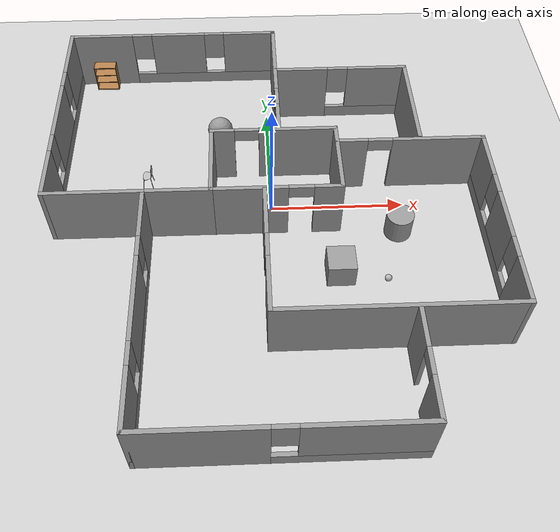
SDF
<sdf version="1.7">
 <world name="default">
  <light name="sun" type="directional">
   <pose>0 0 10 0 -0 0</pose>
   <diffuse>0.8 0.8 0.8 1</diffuse>
   <specular>0.2 0.2 0.2 1</specular>
   <attenuation>
    <range>1000</range>
    <constant>0.9</constant>
    <linear>0.01</linear>
    <quadratic>0.001</quadratic>
   </attenuation>
   <direction>-0.5 0.1 -0.9</direction>
   <spot><inner_angle>0</inner_angle><outer_angle>0</outer_angle><falloff>0</falloff></spot>
  </light>
  <model name="ground_plane">
   <static>1</static>
   <link name="link">
    <collision name="collision">
     <geometry><plane><normal>0 0 1</normal><size>100 100</size></plane></geometry>
     <surface>
      <contact><collide_bitmask>65535</collide_bitmask></contact>
      <friction><ode><mu>100</mu><mu2>50</mu2></ode></friction>
     </surface>
    </collision>
    <visual name="visual">
     <cast_shadows>0</cast_shadows>
     <geometry><plane><normal>0 0 1</normal><size>100 100</size></plane></geometry>
     <material>
      <script><uri>file://media/materials/scripts/gazebo.material</uri><name>Gazebo/Grey</name></script>
     </material>
    </visual>
   </link>
  </model>
  <gravity>0 0 -9.8</gravity>
  <magnetic_field>6e-06 2.3e-05 -4.2e-05</magnetic_field>
  <atmosphere type="adiabatic"/>
  <physics type="ode">
   <max_step_size>0.001</max_step_size>
   <real_time_factor>1</real_time_factor>
   <real_time_update_rate>1000</real_time_update_rate>
  </physics>
  <scene><ambient>0.4 0.4 0.4 1</ambient><background>0.7 0.7 0.7 1</background><shadows>1</shadows></scene>
  <spherical_coordinates>
   <surface_model>EARTH_WGS84</surface_model>
   <latitude_deg>0</latitude_deg>
   <longitude_deg>0</longitude_deg>
   <elevation>0</elevation>
   <heading_deg>0</heading_deg>
  </spherical_coordinates>
  <model name="groundfloor">
   <pose>-0.0948 -1.11512 0 0 -0 0</pose>
   <link name="Wall_0">
    <collision name="Wall_0_Collision">
     <geometry><box><size>3 0.15 2.5</size></box></geometry>
     <pose>0 0 1.25 0 -0 0</pose>
    </collision>
    <visual name="Wall_0_Visual">
     <pose>0 0 1.25 0 -0 0</pose>
     <geometry><box><size>3 0.15 2.5</size></box></geometry>
     <material>
      <script><uri>file://media/materials/scripts/gazebo.material</uri><name>Gazebo/Grey</name></script>
      <ambient>1 1 1 1</ambient>
     </material>
     <meta><layer>0</layer></meta>
    </visual>
    <pose>-2.06127 1.45738 0 0 -0 1.5708</pose>
   </link>
   <link name="Wall_1">
    <pose>0.238729 2.88238 0 0 -0 0</pose>
    <visual name="Wall_1_Visual_0">
     <pose>-1.91205 0 1.25 0 -0 0</pose>
     <geometry><box><size>0.925905 0.15 2.5</size></box></geometry>
     <material>
      <script><uri>file://media/materials/scripts/gazebo.material</uri><name>Gazebo/Grey</name></script>
      <ambient>1 1 1 1</ambient>
     </material>
     <meta><layer>0</layer></meta>
    </visual>
    <collision name="Wall_1_Collision_0">
     <geometry><box><size>0.925905 0.15 2.5</size></box></geometry>
     <pose>-1.91205 0 1.25 0 -0 0</pose>
    </collision>
    <visual name="Wall_1_Visual_1">
     <pose>0.912952 0 1.25 0 -0 0</pose>
     <geometry><box><size>2.92409 0.15 2.5</size></box></geometry>
     <material>
      <script><uri>file://media/materials/scripts/gazebo.material</uri><name>Gazebo/Grey</name></script>
      <ambient>1 1 1 1</ambient>
     </material>
     <meta><layer>0</layer></meta>
    </visual>
    <collision name="Wall_1_Collision_1">
     <geometry><box><size>2.92409 0.15 2.5</size></box></geometry>
     <pose>0.912952 0 1.25 0 -0 0</pose>
    </collision>
    <visual name="Wall_1_Visual_2">
     <pose>-0.999095 0 2.25 0 -0 0</pose>
     <geometry><box><size>0.9 0.15 0.5</size></box></geometry>
     <material>
      <script><uri>file://media/materials/scripts/gazebo.material</uri><name>Gazebo/Grey</name></script>
      <ambient>1 1 1 1</ambient>
     </material>
     <meta><layer>0</layer></meta>
    </visual>
    <collision name="Wall_1_Collision_2">
     <geometry><box><size>0.9 0.15 0.5</size></box></geometry>
     <pose>-0.999095 0 2.25 0 -0 0</pose>
    </collision>
   </link>
   <link name="Wall_19">
    <pose>-0.188728 -2.47429 0 0 -0 -1.5708</pose>
    <visual name="Wall_19_Visual_0">
     <pose>-1.50515 0 1.25 0 -0 0</pose>
     <geometry><box><size>1.9897 0.15 2.5</size></box></geometry>
     <material>
      <script><uri>file://media/materials/scripts/gazebo.material</uri><name>Gazebo/Grey</name></script>
      <ambient>1 1 1 1</ambient>
     </material>
     <meta><layer>0</layer></meta>
    </visual>
    <collision name="Wall_19_Collision_0">
     <geometry><box><size>1.9897 0.15 2.5</size></box></geometry>
     <pose>-1.50515 0 1.25 0 -0 0</pose>
    </collision>
    <visual name="Wall_19_Visual_1">
     <pose>1.44485 0 1.25 0 -0 0</pose>
     <geometry><box><size>2.1103 0.15 2.5</size></box></geometry>
     <material>
      <script><uri>file://media/materials/scripts/gazebo.material</uri><name>Gazebo/Grey</name></script>
      <ambient>1 1 1 1</ambient>
     </material>
     <meta><layer>0</layer></meta>
    </visual>
    <collision name="Wall_19_Collision_1">
     <geometry><box><size>2.1103 0.15 2.5</size></box></geometry>
     <pose>1.44485 0 1.25 0 -0 0</pose>
    </collision>
    <visual name="Wall_19_Visual_2">
     <pose>-0.060303 0 2.25 0 -0 0</pose>
     <geometry><box><size>0.9 0.15 0.5</size></box></geometry>
     <material>
      <script><uri>file://media/materials/scripts/gazebo.material</uri><name>Gazebo/Grey</name></script>
      <ambient>1 1 1 1</ambient>
     </material>
     <meta><layer>0</layer></meta>
    </visual>
    <collision name="Wall_19_Collision_2">
     <geometry><box><size>0.9 0.15 0.5</size></box></geometry>
     <pose>-0.060303 0 2.25 0 -0 0</pose>
    </collision>
   </link>
   <link name="Wall_2">
    <collision name="Wall_2_Collision">
     <geometry><box><size>3 0.15 2.5</size></box></geometry>
     <pose>0 0 1.25 0 -0 0</pose>
    </collision>
    <visual name="Wall_2_Visual">
     <pose>0 0 1.25 0 -0 0</pose>
     <geometry><box><size>3 0.15 2.5</size></box></geometry>
     <material>
      <script><uri>file://media/materials/scripts/gazebo.material</uri><name>Gazebo/Grey</name></script>
      <ambient>1 1 1 1</ambient>
     </material>
     <meta><layer>0</layer></meta>
    </visual>
    <pose>2.53873 1.45738 0 0 -0 -1.5708</pose>
   </link>
   <link name="Wall_20">
    <collision name="Wall_20_Collision">
     <geometry><box><size>8.25 0.15 2.5</size></box></geometry>
     <pose>0 0 1.25 0 -0 0</pose>
    </collision>
    <visual name="Wall_20_Visual">
     <pose>0 0 1.25 0 -0 0</pose>
     <geometry><box><size>8.25 0.15 2.5</size></box></geometry>
     <material>
      <script><uri>file://media/materials/scripts/gazebo.material</uri><name>Gazebo/Grey</name></script>
      <ambient>1 1 1 1</ambient>
     </material>
     <meta><layer>0</layer></meta>
    </visual>
    <pose>3.86127 -4.89929 0 0 -0 0</pose>
   </link>
   <link name="Wall_21">
    <pose>7.91127 -1.34929 0 0 -0 1.5708</pose>
    <visual name="Wall_21_Visual_0">
     <pose>-2.73833 0 1.25 0 -0 0</pose>
     <geometry><box><size>1.77334 0.15 2.5</size></box></geometry>
     <material>
      <script><uri>file://media/materials/scripts/gazebo.material</uri><name>Gazebo/Grey</name></script>
      <ambient>1 1 1 1</ambient>
     </material>
     <meta><layer>0</layer></meta>
    </visual>
    <collision name="Wall_21_Collision_0">
     <geometry><box><size>1.77334 0.15 2.5</size></box></geometry>
     <pose>-2.73833 0 1.25 0 -0 0</pose>
    </collision>
    <visual name="Wall_21_Visual_1">
     <pose>0.886668 0 0.25 0 -0 0</pose>
     <geometry><box><size>5.47666 0.15 0.5</size></box></geometry>
     <material>
      <script><uri>file://media/materials/scripts/gazebo.material</uri><name>Gazebo/Grey</name></script>
      <ambient>1 1 1 1</ambient>
     </material>
     <meta><layer>0</layer></meta>
    </visual>
    <collision name="Wall_21_Collision_1">
     <geometry><box><size>5.47666 0.15 0.5</size></box></geometry>
     <pose>0.886668 0 0.25 0 -0 0</pose>
    </collision>
    <visual name="Wall_21_Visual_2">
     <pose>-0.079692 0 1.5 0 -0 0</pose>
     <geometry><box><size>1.94394 0.15 2</size></box></geometry>
     <material>
      <script><uri>file://media/materials/scripts/gazebo.material</uri><name>Gazebo/Grey</name></script>
      <ambient>1 1 1 1</ambient>
     </material>
     <meta><layer>0</layer></meta>
    </visual>
    <collision name="Wall_21_Collision_2">
     <geometry><box><size>1.94394 0.15 2</size></box></geometry>
     <pose>-0.079692 0 1.5 0 -0 0</pose>
    </collision>
    <visual name="Wall_21_Visual_3">
     <pose>2.65864 0 1.5 0 -0 0</pose>
     <geometry><box><size>1.93272 0.15 2</size></box></geometry>
     <material>
      <script><uri>file://media/materials/scripts/gazebo.material</uri><name>Gazebo/Grey</name></script>
      <ambient>1 1 1 1</ambient>
     </material>
     <meta><layer>0</layer></meta>
    </visual>
    <collision name="Wall_21_Collision_3">
     <geometry><box><size>1.93272 0.15 2</size></box></geometry>
     <pose>2.65864 0 1.5 0 -0 0</pose>
    </collision>
    <visual name="Wall_21_Visual_4">
     <pose>-1.45166 0 1.9 0 -0 0</pose>
     <geometry><box><size>0.8 0.15 1.2</size></box></geometry>
     <material>
      <script><uri>file://media/materials/scripts/gazebo.material</uri><name>Gazebo/Grey</name></script>
      <ambient>1 1 1 1</ambient>
     </material>
     <meta><layer>0</layer></meta>
    </visual>
    <collision name="Wall_21_Collision_4">
     <geometry><box><size>0.8 0.15 1.2</size></box></geometry>
     <pose>-1.45166 0 1.9 0 -0 0</pose>
    </collision>
    <visual name="Wall_21_Visual_5">
     <pose>1.29228 0 1.9 0 -0 0</pose>
     <geometry><box><size>0.8 0.15 1.2</size></box></geometry>
     <material>
      <script><uri>file://media/materials/scripts/gazebo.material</uri><name>Gazebo/Grey</name></script>
      <ambient>1 1 1 1</ambient>
     </material>
     <meta><layer>0</layer></meta>
    </visual>
    <collision name="Wall_21_Collision_5">
     <geometry><box><size>0.8 0.15 1.2</size></box></geometry>
     <pose>1.29228 0 1.9 0 -0 0</pose>
    </collision>
   </link>
   <link name="Wall_22">
    <pose>5.23627 2.20071 0 0 -0 3.14159</pose>
    <visual name="Wall_22_Visual_0">
     <pose>-1.04661 0 1.25 0 -0 0</pose>
     <geometry><box><size>3.40679 0.15 2.5</size></box></geometry>
     <material>
      <script><uri>file://media/materials/scripts/gazebo.material</uri><name>Gazebo/Grey</name></script>
      <ambient>1 1 1 1</ambient>
     </material>
     <meta><layer>0</layer></meta>
    </visual>
    <collision name="Wall_22_Collision_0">
     <geometry><box><size>3.40679 0.15 2.5</size></box></geometry>
     <pose>-1.04661 0 1.25 0 -0 0</pose>
    </collision>
    <visual name="Wall_22_Visual_1">
     <pose>2.1534 0 1.25 0 -0 0</pose>
     <geometry><box><size>1.19321 0.15 2.5</size></box></geometry>
     <material>
      <script><uri>file://media/materials/scripts/gazebo.material</uri><name>Gazebo/Grey</name></script>
      <ambient>1 1 1 1</ambient>
     </material>
     <meta><layer>0</layer></meta>
    </visual>
    <collision name="Wall_22_Collision_1">
     <geometry><box><size>1.19321 0.15 2.5</size></box></geometry>
     <pose>2.1534 0 1.25 0 -0 0</pose>
    </collision>
    <visual name="Wall_22_Visual_2">
     <pose>1.10679 0 2.25 0 -0 0</pose>
     <geometry><box><size>0.9 0.15 0.5</size></box></geometry>
     <material>
      <script><uri>file://media/materials/scripts/gazebo.material</uri><name>Gazebo/Grey</name></script>
      <ambient>1 1 1 1</ambient>
     </material>
     <meta><layer>0</layer></meta>
    </visual>
    <collision name="Wall_22_Collision_2">
     <geometry><box><size>0.9 0.15 0.5</size></box></geometry>
     <pose>1.10679 0 2.25 0 -0 0</pose>
    </collision>
   </link>
   <link name="Wall_24">
    <pose>3.05607 6.23999 0 0 -0 0</pose>
    <visual name="Wall_24_Visual_0">
     <pose>-1.57383 0 1.25 0 -0 0</pose>
     <geometry><box><size>2.10234 0.15 2.5</size></box></geometry>
     <material>
      <script><uri>file://media/materials/scripts/gazebo.material</uri><name>Gazebo/Grey</name></script>
      <ambient>1 1 1 1</ambient>
     </material>
     <meta><layer>0</layer></meta>
    </visual>
    <collision name="Wall_24_Collision_0">
     <geometry><box><size>2.10234 0.15 2.5</size></box></geometry>
     <pose>-1.57383 0 1.25 0 -0 0</pose>
    </collision>
    <visual name="Wall_24_Visual_1">
     <pose>1.05117 0 0.25 0 -0 0</pose>
     <geometry><box><size>3.14766 0.15 0.5</size></box></geometry>
     <material>
      <script><uri>file://media/materials/scripts/gazebo.material</uri><name>Gazebo/Grey</name></script>
      <ambient>1 1 1 1</ambient>
     </material>
     <meta><layer>0</layer></meta>
    </visual>
    <collision name="Wall_24_Collision_1">
     <geometry><box><size>3.14766 0.15 0.5</size></box></geometry>
     <pose>1.05117 0 0.25 0 -0 0</pose>
    </collision>
    <visual name="Wall_24_Visual_2">
     <pose>1.45117 0 1.5 0 -0 0</pose>
     <geometry><box><size>2.34767 0.15 2</size></box></geometry>
     <material>
      <script><uri>file://media/materials/scripts/gazebo.material</uri><name>Gazebo/Grey</name></script>
      <ambient>1 1 1 1</ambient>
     </material>
     <meta><layer>0</layer></meta>
    </visual>
    <collision name="Wall_24_Collision_2">
     <geometry><box><size>2.34767 0.15 2</size></box></geometry>
     <pose>1.45117 0 1.5 0 -0 0</pose>
    </collision>
    <visual name="Wall_24_Visual_3">
     <pose>-0.122665 0 1.9 0 -0 0</pose>
     <geometry><box><size>0.8 0.15 1.2</size></box></geometry>
     <material>
      <script><uri>file://media/materials/scripts/gazebo.material</uri><name>Gazebo/Grey</name></script>
      <ambient>1 1 1 1</ambient>
     </material>
     <meta><layer>0</layer></meta>
    </visual>
    <collision name="Wall_24_Collision_3">
     <geometry><box><size>0.8 0.15 1.2</size></box></geometry>
     <pose>-0.122665 0 1.9 0 -0 0</pose>
    </collision>
   </link>
   <link name="Wall_25">
    <collision name="Wall_25_Collision">
     <geometry><box><size>4 0.15 2.5</size></box></geometry>
     <pose>0 0 1.25 0 -0 0</pose>
    </collision>
    <visual name="Wall_25_Visual">
     <pose>0 0 1.25 0 -0 0</pose>
     <geometry><box><size>4 0.15 2.5</size></box></geometry>
     <material>
      <script><uri>file://media/materials/scripts/gazebo.material</uri><name>Gazebo/Grey</name></script>
      <ambient>1 1 1 1</ambient>
     </material>
     <meta><layer>0</layer></meta>
    </visual>
    <pose>5.60607 4.31499 0 0 -0 -1.5708</pose>
   </link>
   <link name="Wall_28">
    <pose>-4.4172 -4.33238 0 0 -0 -1.5708</pose>
    <visual name="Wall_28_Visual_0">
     <pose>-3.39443 0 1.25 0 -0 0</pose>
     <geometry><box><size>1.96113 0.15 2.5</size></box></geometry>
     <material>
      <script><uri>file://media/materials/scripts/gazebo.material</uri><name>Gazebo/Grey</name></script>
      <ambient>1 1 1 1</ambient>
     </material>
     <meta><layer>0</layer></meta>
    </visual>
    <collision name="Wall_28_Collision_0">
     <geometry><box><size>1.96113 0.15 2.5</size></box></geometry>
     <pose>-3.39443 0 1.25 0 -0 0</pose>
    </collision>
    <visual name="Wall_28_Visual_1">
     <pose>0.980566 0 0.25 0 -0 0</pose>
     <geometry><box><size>6.78887 0.15 0.5</size></box></geometry>
     <material>
      <script><uri>file://media/materials/scripts/gazebo.material</uri><name>Gazebo/Grey</name></script>
      <ambient>1 1 1 1</ambient>
     </material>
     <meta><layer>0</layer></meta>
    </visual>
    <collision name="Wall_28_Collision_1">
     <geometry><box><size>6.78887 0.15 0.5</size></box></geometry>
     <pose>0.980566 0 0.25 0 -0 0</pose>
    </collision>
    <visual name="Wall_28_Visual_2">
     <pose>-0.059863 0 1.5 0 -0 0</pose>
     <geometry><box><size>3.10801 0.15 2</size></box></geometry>
     <material>
      <script><uri>file://media/materials/scripts/gazebo.material</uri><name>Gazebo/Grey</name></script>
      <ambient>1 1 1 1</ambient>
     </material>
     <meta><layer>0</layer></meta>
    </visual>
    <collision name="Wall_28_Collision_2">
     <geometry><box><size>3.10801 0.15 2</size></box></geometry>
     <pose>-0.059863 0 1.5 0 -0 0</pose>
    </collision>
    <visual name="Wall_28_Visual_3">
     <pose>3.33457 0 1.5 0 -0 0</pose>
     <geometry><box><size>2.08086 0.15 2</size></box></geometry>
     <material>
      <script><uri>file://media/materials/scripts/gazebo.material</uri><name>Gazebo/Grey</name></script>
      <ambient>1 1 1 1</ambient>
     </material>
     <meta><layer>0</layer></meta>
    </visual>
    <collision name="Wall_28_Collision_3">
     <geometry><box><size>2.08086 0.15 2</size></box></geometry>
     <pose>3.33457 0 1.5 0 -0 0</pose>
    </collision>
    <visual name="Wall_28_Visual_4">
     <pose>-2.01387 0 1.9 0 -0 0</pose>
     <geometry><box><size>0.8 0.15 1.2</size></box></geometry>
     <material>
      <script><uri>file://media/materials/scripts/gazebo.material</uri><name>Gazebo/Grey</name></script>
      <ambient>1 1 1 1</ambient>
     </material>
     <meta><layer>0</layer></meta>
    </visual>
    <collision name="Wall_28_Collision_4">
     <geometry><box><size>0.8 0.15 1.2</size></box></geometry>
     <pose>-2.01387 0 1.9 0 -0 0</pose>
    </collision>
    <visual name="Wall_28_Visual_5">
     <pose>1.89414 0 1.9 0 -0 0</pose>
     <geometry><box><size>0.8 0.15 1.2</size></box></geometry>
     <material>
      <script><uri>file://media/materials/scripts/gazebo.material</uri><name>Gazebo/Grey</name></script>
      <ambient>1 1 1 1</ambient>
     </material>
     <meta><layer>0</layer></meta>
    </visual>
    <collision name="Wall_28_Collision_5">
     <geometry><box><size>0.8 0.15 1.2</size></box></geometry>
     <pose>1.89414 0 1.9 0 -0 0</pose>
    </collision>
   </link>
   <link name="Wall_3">
    <pose>0.238729 0.032382 0 0 -0 3.14159</pose>
    <visual name="Wall_3_Visual_0">
     <pose>-1.84519 0 1.25 0 -0 0</pose>
     <geometry><box><size>1.05962 0.15 2.5</size></box></geometry>
     <material>
      <script><uri>file://media/materials/scripts/gazebo.material</uri><name>Gazebo/Grey</name></script>
      <ambient>1 1 1 1</ambient>
     </material>
     <meta><layer>0</layer></meta>
    </visual>
    <collision name="Wall_3_Collision_0">
     <geometry><box><size>1.05962 0.15 2.5</size></box></geometry>
     <pose>-1.84519 0 1.25 0 -0 0</pose>
    </collision>
    <visual name="Wall_3_Visual_1">
     <pose>0.97981 0 1.25 0 -0 0</pose>
     <geometry><box><size>2.79038 0.15 2.5</size></box></geometry>
     <material>
      <script><uri>file://media/materials/scripts/gazebo.material</uri><name>Gazebo/Grey</name></script>
      <ambient>1 1 1 1</ambient>
     </material>
     <meta><layer>0</layer></meta>
    </visual>
    <collision name="Wall_3_Collision_1">
     <geometry><box><size>2.79038 0.15 2.5</size></box></geometry>
     <pose>0.97981 0 1.25 0 -0 0</pose>
    </collision>
    <visual name="Wall_3_Visual_2">
     <pose>-0.865379 0 2.25 0 -0 0</pose>
     <geometry><box><size>0.9 0.15 0.5</size></box></geometry>
     <material>
      <script><uri>file://media/materials/scripts/gazebo.material</uri><name>Gazebo/Grey</name></script>
      <ambient>1 1 1 1</ambient>
     </material>
     <meta><layer>0</layer></meta>
    </visual>
    <collision name="Wall_3_Collision_2">
     <geometry><box><size>0.9 0.15 0.5</size></box></geometry>
     <pose>-0.865379 0 2.25 0 -0 0</pose>
    </collision>
   </link>
   <link name="Wall_30">
    <pose>0.007801 -8.63238 0 0 -0 0</pose>
    <visual name="Wall_30_Visual_0">
     <pose>-2.40855 0 1.25 0 -0 0</pose>
     <geometry><box><size>4.18291 0.15 2.5</size></box></geometry>
     <material>
      <script><uri>file://media/materials/scripts/gazebo.material</uri><name>Gazebo/Grey</name></script>
      <ambient>1 1 1 1</ambient>
     </material>
     <meta><layer>0</layer></meta>
    </visual>
    <collision name="Wall_30_Collision_0">
     <geometry><box><size>4.18291 0.15 2.5</size></box></geometry>
     <pose>-2.40855 0 1.25 0 -0 0</pose>
    </collision>
    <visual name="Wall_30_Visual_1">
     <pose>2.09145 0 0.25 0 -0 0</pose>
     <geometry><box><size>4.81709 0.15 0.5</size></box></geometry>
     <material>
      <script><uri>file://media/materials/scripts/gazebo.material</uri><name>Gazebo/Grey</name></script>
      <ambient>1 1 1 1</ambient>
     </material>
     <meta><layer>0</layer></meta>
    </visual>
    <collision name="Wall_30_Collision_1">
     <geometry><box><size>4.81709 0.15 0.5</size></box></geometry>
     <pose>2.09145 0 0.25 0 -0 0</pose>
    </collision>
    <visual name="Wall_30_Visual_2">
     <pose>2.49145 0 1.5 0 -0 0</pose>
     <geometry><box><size>4.01709 0.15 2</size></box></geometry>
     <material>
      <script><uri>file://media/materials/scripts/gazebo.material</uri><name>Gazebo/Grey</name></script>
      <ambient>1 1 1 1</ambient>
     </material>
     <meta><layer>0</layer></meta>
    </visual>
    <collision name="Wall_30_Collision_2">
     <geometry><box><size>4.01709 0.15 2</size></box></geometry>
     <pose>2.49145 0 1.5 0 -0 0</pose>
    </collision>
    <visual name="Wall_30_Visual_3">
     <pose>0.082907 0 1.9 0 -0 0</pose>
     <geometry><box><size>0.8 0.15 1.2</size></box></geometry>
     <material>
      <script><uri>file://media/materials/scripts/gazebo.material</uri><name>Gazebo/Grey</name></script>
      <ambient>1 1 1 1</ambient>
     </material>
     <meta><layer>0</layer></meta>
    </visual>
    <collision name="Wall_30_Collision_3">
     <geometry><box><size>0.8 0.15 1.2</size></box></geometry>
     <pose>0.082907 0 1.9 0 -0 0</pose>
    </collision>
   </link>
   <link name="Wall_31">
    <pose>4.4328 -6.83238 0 0 -0 1.5708</pose>
    <visual name="Wall_31_Visual_0">
     <pose>-1.14195 0 1.25 0 -0 0</pose>
     <geometry><box><size>1.46609 0.15 2.5</size></box></geometry>
     <material>
      <script><uri>file://media/materials/scripts/gazebo.material</uri><name>Gazebo/Grey</name></script>
      <ambient>1 1 1 1</ambient>
     </material>
     <meta><layer>0</layer></meta>
    </visual>
    <collision name="Wall_31_Collision_0">
     <geometry><box><size>1.46609 0.15 2.5</size></box></geometry>
     <pose>-1.14195 0 1.25 0 -0 0</pose>
    </collision>
    <visual name="Wall_31_Visual_1">
     <pose>1.18305 0 1.25 0 -0 0</pose>
     <geometry><box><size>1.38391 0.15 2.5</size></box></geometry>
     <material>
      <script><uri>file://media/materials/scripts/gazebo.material</uri><name>Gazebo/Grey</name></script>
      <ambient>1 1 1 1</ambient>
     </material>
     <meta><layer>0</layer></meta>
    </visual>
    <collision name="Wall_31_Collision_1">
     <geometry><box><size>1.38391 0.15 2.5</size></box></geometry>
     <pose>1.18305 0 1.25 0 -0 0</pose>
    </collision>
    <visual name="Wall_31_Visual_2">
     <pose>0.041094 0 2.25 0 -0 0</pose>
     <geometry><box><size>0.9 0.15 0.5</size></box></geometry>
     <material>
      <script><uri>file://media/materials/scripts/gazebo.material</uri><name>Gazebo/Grey</name></script>
      <ambient>1 1 1 1</ambient>
     </material>
     <meta><layer>0</layer></meta>
    </visual>
    <collision name="Wall_31_Collision_2">
     <geometry><box><size>0.9 0.15 0.5</size></box></geometry>
     <pose>0.041094 0 2.25 0 -0 0</pose>
    </collision>
   </link>
   <link name="Wall_4">
    <collision name="Wall_4_Collision">
     <geometry><box><size>6 0.15 2.5</size></box></geometry>
     <pose>0 0 1.25 0 -0 0</pose>
    </collision>
    <visual name="Wall_4_Visual">
     <pose>0 0 1.25 0 -0 0</pose>
     <geometry><box><size>6 0.15 2.5</size></box></geometry>
     <material>
      <script><uri>file://media/materials/scripts/gazebo.material</uri><name>Gazebo/Grey</name></script>
      <ambient>1 1 1 1</ambient>
     </material>
     <meta><layer>0</layer></meta>
    </visual>
    <pose>-4.98627 0.032382 0 0 -0 3.14159</pose>
   </link>
   <link name="Wall_5">
    <pose>-7.91127 4.33238 0 0 -0 1.5708</pose>
    <visual name="Wall_5_Visual_0">
     <pose>-3.31576 0 1.25 0 -0 0</pose>
     <geometry><box><size>2.11848 0.15 2.5</size></box></geometry>
     <material>
      <script><uri>file://media/materials/scripts/gazebo.material</uri><name>Gazebo/Grey</name></script>
      <ambient>1 1 1 1</ambient>
     </material>
     <meta><layer>0</layer></meta>
    </visual>
    <collision name="Wall_5_Collision_0">
     <geometry><box><size>2.11848 0.15 2.5</size></box></geometry>
     <pose>-3.31576 0 1.25 0 -0 0</pose>
    </collision>
    <visual name="Wall_5_Visual_1">
     <pose>1.05924 0 0.25 0 -0 0</pose>
     <geometry><box><size>6.63152 0.15 0.5</size></box></geometry>
     <material>
      <script><uri>file://media/materials/scripts/gazebo.material</uri><name>Gazebo/Grey</name></script>
      <ambient>1 1 1 1</ambient>
     </material>
     <meta><layer>0</layer></meta>
    </visual>
    <collision name="Wall_5_Collision_1">
     <geometry><box><size>6.63152 0.15 0.5</size></box></geometry>
     <pose>1.05924 0 0.25 0 -0 0</pose>
    </collision>
    <visual name="Wall_5_Visual_2">
     <pose>-0.1033 0 1.5 0 -0 0</pose>
     <geometry><box><size>2.70644 0.15 2</size></box></geometry>
     <material>
      <script><uri>file://media/materials/scripts/gazebo.material</uri><name>Gazebo/Grey</name></script>
      <ambient>1 1 1 1</ambient>
     </material>
     <meta><layer>0</layer></meta>
    </visual>
    <collision name="Wall_5_Collision_2">
     <geometry><box><size>2.70644 0.15 2</size></box></geometry>
     <pose>-0.1033 0 1.5 0 -0 0</pose>
    </collision>
    <visual name="Wall_5_Visual_3">
     <pose>3.21246 0 1.5 0 -0 0</pose>
     <geometry><box><size>2.32508 0.15 2</size></box></geometry>
     <material>
      <script><uri>file://media/materials/scripts/gazebo.material</uri><name>Gazebo/Grey</name></script>
      <ambient>1 1 1 1</ambient>
     </material>
     <meta><layer>0</layer></meta>
    </visual>
    <collision name="Wall_5_Collision_3">
     <geometry><box><size>2.32508 0.15 2</size></box></geometry>
     <pose>3.21246 0 1.5 0 -0 0</pose>
    </collision>
    <visual name="Wall_5_Visual_4">
     <pose>-1.85652 0 1.9 0 -0 0</pose>
     <geometry><box><size>0.8 0.15 1.2</size></box></geometry>
     <material>
      <script><uri>file://media/materials/scripts/gazebo.material</uri><name>Gazebo/Grey</name></script>
      <ambient>1 1 1 1</ambient>
     </material>
     <meta><layer>0</layer></meta>
    </visual>
    <collision name="Wall_5_Collision_4">
     <geometry><box><size>0.8 0.15 1.2</size></box></geometry>
     <pose>-1.85652 0 1.9 0 -0 0</pose>
    </collision>
    <visual name="Wall_5_Visual_5">
     <pose>1.64992 0 1.9 0 -0 0</pose>
     <geometry><box><size>0.8 0.15 1.2</size></box></geometry>
     <material>
      <script><uri>file://media/materials/scripts/gazebo.material</uri><name>Gazebo/Grey</name></script>
      <ambient>1 1 1 1</ambient>
     </material>
     <meta><layer>0</layer></meta>
    </visual>
    <collision name="Wall_5_Collision_5">
     <geometry><box><size>0.8 0.15 1.2</size></box></geometry>
     <pose>1.64992 0 1.9 0 -0 0</pose>
    </collision>
   </link>
   <link name="Wall_6">
    <pose>-3.73627 8.63238 0 0 -0 0</pose>
    <visual name="Wall_6_Visual_0">
     <pose>-2.96536 0 1.25 0 -0 0</pose>
     <geometry><box><size>2.56928 0.15 2.5</size></box></geometry>
     <material>
      <script><uri>file://media/materials/scripts/gazebo.material</uri><name>Gazebo/Grey</name></script>
      <ambient>1 1 1 1</ambient>
     </material>
     <meta><layer>0</layer></meta>
    </visual>
    <collision name="Wall_6_Collision_0">
     <geometry><box><size>2.56928 0.15 2.5</size></box></geometry>
     <pose>-2.96536 0 1.25 0 -0 0</pose>
    </collision>
    <visual name="Wall_6_Visual_1">
     <pose>1.28464 0 0.25 0 -0 0</pose>
     <geometry><box><size>5.93072 0.15 0.5</size></box></geometry>
     <material>
      <script><uri>file://media/materials/scripts/gazebo.material</uri><name>Gazebo/Grey</name></script>
      <ambient>1 1 1 1</ambient>
     </material>
     <meta><layer>0</layer></meta>
    </visual>
    <collision name="Wall_6_Collision_1">
     <geometry><box><size>5.93072 0.15 0.5</size></box></geometry>
     <pose>1.28464 0 0.25 0 -0 0</pose>
    </collision>
    <visual name="Wall_6_Visual_2">
     <pose>0.214372 0 1.5 0 -0 0</pose>
     <geometry><box><size>2.1902 0.15 2</size></box></geometry>
     <material>
      <script><uri>file://media/materials/scripts/gazebo.material</uri><name>Gazebo/Grey</name></script>
      <ambient>1 1 1 1</ambient>
     </material>
     <meta><layer>0</layer></meta>
    </visual>
    <collision name="Wall_6_Collision_2">
     <geometry><box><size>2.1902 0.15 2</size></box></geometry>
     <pose>0.214372 0 1.5 0 -0 0</pose>
    </collision>
    <visual name="Wall_6_Visual_3">
     <pose>3.17973 0 1.5 0 -0 0</pose>
     <geometry><box><size>2.14053 0.15 2</size></box></geometry>
     <material>
      <script><uri>file://media/materials/scripts/gazebo.material</uri><name>Gazebo/Grey</name></script>
      <ambient>1 1 1 1</ambient>
     </material>
     <meta><layer>0</layer></meta>
    </visual>
    <collision name="Wall_6_Collision_3">
     <geometry><box><size>2.14053 0.15 2</size></box></geometry>
     <pose>3.17973 0 1.5 0 -0 0</pose>
    </collision>
    <visual name="Wall_6_Visual_4">
     <pose>-1.28072 0 1.9 0 -0 0</pose>
     <geometry><box><size>0.8 0.15 1.2</size></box></geometry>
     <material>
      <script><uri>file://media/materials/scripts/gazebo.material</uri><name>Gazebo/Grey</name></script>
      <ambient>1 1 1 1</ambient>
     </material>
     <meta><layer>0</layer></meta>
    </visual>
    <collision name="Wall_6_Collision_4">
     <geometry><box><size>0.8 0.15 1.2</size></box></geometry>
     <pose>-1.28072 0 1.9 0 -0 0</pose>
    </collision>
    <visual name="Wall_6_Visual_5">
     <pose>1.70947 0 1.9 0 -0 0</pose>
     <geometry><box><size>0.8 0.15 1.2</size></box></geometry>
     <material>
      <script><uri>file://media/materials/scripts/gazebo.material</uri><name>Gazebo/Grey</name></script>
      <ambient>1 1 1 1</ambient>
     </material>
     <meta><layer>0</layer></meta>
    </visual>
    <collision name="Wall_6_Collision_5">
     <geometry><box><size>0.8 0.15 1.2</size></box></geometry>
     <pose>1.70947 0 1.9 0 -0 0</pose>
    </collision>
   </link>
   <link name="Wall_7">
    <pose>0.438729 5.83238 0 0 -0 -1.5708</pose>
    <visual name="Wall_7_Visual_0">
     <pose>-1.09237 0 1.25 0 -0 0</pose>
     <geometry><box><size>3.56526 0.15 2.5</size></box></geometry>
     <material>
      <script><uri>file://media/materials/scripts/gazebo.material</uri><name>Gazebo/Grey</name></script>
      <ambient>1 1 1 1</ambient>
     </material>
     <meta><layer>0</layer></meta>
    </visual>
    <collision name="Wall_7_Collision_0">
     <geometry><box><size>3.56526 0.15 2.5</size></box></geometry>
     <pose>-1.09237 0 1.25 0 -0 0</pose>
    </collision>
    <visual name="Wall_7_Visual_1">
     <pose>2.23263 0 1.25 0 -0 0</pose>
     <geometry><box><size>1.28474 0.15 2.5</size></box></geometry>
     <material>
      <script><uri>file://media/materials/scripts/gazebo.material</uri><name>Gazebo/Grey</name></script>
      <ambient>1 1 1 1</ambient>
     </material>
     <meta><layer>0</layer></meta>
    </visual>
    <collision name="Wall_7_Collision_1">
     <geometry><box><size>1.28474 0.15 2.5</size></box></geometry>
     <pose>2.23263 0 1.25 0 -0 0</pose>
    </collision>
    <visual name="Wall_7_Visual_2">
     <pose>1.14026 0 2.25 0 -0 0</pose>
     <geometry><box><size>0.9 0.15 0.5</size></box></geometry>
     <material>
      <script><uri>file://media/materials/scripts/gazebo.material</uri><name>Gazebo/Grey</name></script>
      <ambient>1 1 1 1</ambient>
     </material>
     <meta><layer>0</layer></meta>
    </visual>
    <collision name="Wall_7_Collision_2">
     <geometry><box><size>0.9 0.15 0.5</size></box></geometry>
     <pose>1.14026 0 2.25 0 -0 0</pose>
    </collision>
   </link>
   <static>1</static>
  </model>
  <model name="unit_box">
   <pose>2.31582 -3.09043 0.499995 0 1e-05 0</pose>
   <link name="link">
    <inertial>
     <mass>1</mass>
     <inertia>
      <ixx>0.166667</ixx>
      <ixy>0</ixy>
      <ixz>0</ixz>
      <iyy>0.166667</iyy>
      <iyz>0</iyz>
      <izz>0.166667</izz>
     </inertia>
    </inertial>
    <collision name="collision"><geometry><box><size>1 1 1</size></box></geometry></collision>
    <visual name="visual">
     <geometry><box><size>1 1 1</size></box></geometry>
     <material>
      <script><name>Gazebo/Grey</name><uri>file://media/materials/scripts/gazebo.material</uri></script>
     </material>
    </visual>
   </link>
  </model>
  <model name="unit_sphere">
   <pose>-1.92229 3.85511 0.5 0 -0 0</pose>
   <link name="link">
    <inertial>
     <mass>1</mass>
     <inertia><ixx>0.1</ixx><ixy>0</ixy><ixz>0</ixz><iyy>0.1</iyy><iyz>0</iyz><izz>0.1</izz></inertia>
    </inertial>
    <collision name="collision"><geometry><sphere><radius>0.5</radius></sphere></geometry></collision>
    <visual name="visual">
     <geometry><sphere><radius>0.5</radius></sphere></geometry>
     <material>
      <script><name>Gazebo/Grey</name><uri>file://media/materials/scripts/gazebo.material</uri></script>
     </material>
    </visual>
   </link>
  </model>
  <model name="unit_cylinder">
   <pose>4.63208 -1.26184 0.499996 4e-06 3e-06 -0</pose>
   <link name="link">
    <inertial>
     <mass>1</mass>
     <inertia><ixx>0.145833</ixx><ixy>0</ixy><ixz>0</ixz><iyy>0.145833</iyy><iyz>0</iyz><izz>0.125</izz></inertia>
    </inertial>
    <collision name="collision">
     <geometry><cylinder><radius>0.5</radius><length>1</length></cylinder></geometry>
    </collision>
    <visual name="visual">
     <geometry><cylinder><radius>0.5</radius><length>1</length></cylinder></geometry>
     <material>
      <script><name>Gazebo/Grey</name><uri>file://media/materials/scripts/gazebo.material</uri></script>
     </material>
    </visual>
   </link>
  </model>
  <model name="bookshelf">
   <static>1</static>
   <link name="link">
    <inertial><mass>1</mass></inertial>
    <collision name="back">
     <pose>0 0.005 0.6 0 -0 0</pose>
     <geometry><box><size>0.9 0.01 1.2</size></box></geometry>
    </collision>
    <visual name="visual1">
     <pose>0 0.005 0.6 0 -0 0</pose>
     <geometry><box><size>0.9 0.01 1.2</size></box></geometry>
     <material>
      <script><uri>file://media/materials/scripts/gazebo.material</uri><name>Gazebo/Wood</name></script>
     </material>
    </visual>
    <collision name="left_side">
     <pose>0.45 -0.195 0.6 0 -0 0</pose>
     <geometry><box><size>0.02 0.4 1.2</size></box></geometry>
    </collision>
    <visual name="visual2">
     <pose>0.45 -0.195 0.6 0 -0 0</pose>
     <geometry><box><size>0.02 0.4 1.2</size></box></geometry>
     <material>
      <script><uri>file://media/materials/scripts/gazebo.material</uri><name>Gazebo/Wood</name></script>
     </material>
    </visual>
    <collision name="right_side">
     <pose>-0.45 -0.195 0.6 0 -0 0</pose>
     <geometry><box><size>0.02 0.4 1.2</size></box></geometry>
    </collision>
    <visual name="visual3">
     <pose>-0.45 -0.195 0.6 0 -0 0</pose>
     <geometry><box><size>0.02 0.4 1.2</size></box></geometry>
     <material>
      <script><uri>file://media/materials/scripts/gazebo.material</uri><name>Gazebo/Wood</name></script>
     </material>
    </visual>
    <collision name="bottom">
     <pose>0 -0.195 0.03 0 -0 0</pose>
     <geometry><box><size>0.88 0.4 0.06</size></box></geometry>
    </collision>
    <visual name="visual4">
     <pose>0 -0.195 0.03 0 -0 0</pose>
     <geometry><box><size>0.88 0.4 0.06</size></box></geometry>
     <material>
      <script><uri>file://media/materials/scripts/gazebo.material</uri><name>Gazebo/Wood</name></script>
     </material>
    </visual>
    <collision name="top">
     <pose>0 -0.195 1.19 0 -0 0</pose>
     <geometry><box><size>0.88 0.4 0.02</size></box></geometry>
    </collision>
    <visual name="visual5">
     <pose>0 -0.195 1.19 0 -0 0</pose>
     <geometry><box><size>0.88 0.4 0.02</size></box></geometry>
     <material>
      <script><uri>file://media/materials/scripts/gazebo.material</uri><name>Gazebo/Wood</name></script>
     </material>
    </visual>
    <collision name="low_shelf">
     <pose>0 -0.195 0.43 0 -0 0</pose>
     <geometry><box><size>0.88 0.4 0.02</size></box></geometry>
    </collision>
    <visual name="visual6">
     <pose>0 -0.195 0.43 0 -0 0</pose>
     <geometry><box><size>0.88 0.4 0.02</size></box></geometry>
     <material>
      <script><uri>file://media/materials/scripts/gazebo.material</uri><name>Gazebo/Wood</name></script>
     </material>
    </visual>
    <collision name="high_shelf">
     <pose>0 -0.195 0.8 0 -0 0</pose>
     <geometry><box><size>0.88 0.4 0.02</size></box></geometry>
    </collision>
    <visual name="visual7">
     <pose>0 -0.195 0.8 0 -0 0</pose>
     <geometry><box><size>0.88 0.4 0.02</size></box></geometry>
     <material>
      <script><uri>file://media/materials/scripts/gazebo.material</uri><name>Gazebo/Wood</name></script>
     </material>
    </visual>
   </link>
   <pose>-6.8361 7.42506 0 0 -0 0</pose>
  </model>
  <model name="frc2016_ball">
   <pose>4.00213 -3.40579 0.127 0 -0 0</pose>
   <link name="link">
    <inertial>
     <mass>0.213</mass>
     <inertia>
      <ixx>0.00322667</ixx>
      <ixy>0</ixy>
      <ixz>0</ixz>
      <iyy>0.00322667</iyy>
      <iyz>0</iyz>
      <izz>0.00322667</izz>
     </inertia>
    </inertial>
    <visual name="visual"><geometry><sphere><radius>0.127</radius></sphere></geometry></visual>
    <collision name="collision">
     <geometry><sphere><radius>0.127</radius></sphere></geometry>
     <surface>
      <bounce><restitution_coefficient>0.15937</restitution_coefficient><threshold>0</threshold></bounce>
      <contact><ode><max_vel>100</max_vel><min_depth>0.001</min_depth></ode></contact>
     </surface>
    </collision>
   </link>
  </model>
  <model name="coffee_cup_chair">
   <link name="link_0">
    <inertial>
     <mass>1</mass>
     <inertia>
      <ixx>0.166667</ixx>
      <ixy>0</ixy>
      <ixz>0</ixz>
      <iyy>0.166667</iyy>
      <iyz>0</iyz>
      <izz>0.166667</izz>
     </inertia>
    </inertial>
    <visual name="visual">
     <geometry>
      <mesh>
       <uri>/home/elec330/catkin_ws/src/ass2/models/coffee_cup_chair/meshes/coffee_cup_chair.dae</uri>
       <scale>1 1 1</scale>
      </mesh>
     </geometry>
    </visual>
    <collision name="collision">
     <geometry>
      <mesh>
       <uri>/home/elec330/catkin_ws/src/ass2/models/coffee_cup_chair/meshes/coffee_cup_chair.dae</uri>
       <scale>1 1 1</scale>
      </mesh>
     </geometry>
     <surface>
      <friction>
       <ode><mu>1</mu><mu2>1</mu2><fdir1>0 0 0</fdir1><slip1>0</slip1><slip2>0</slip2></ode>
       <torsional>
        <coefficient>1</coefficient>
        <patch_radius>0</patch_radius>
        <surface_radius>0</surface_radius>
        <use_patch_radius>1</use_patch_radius>
        <ode><slip>0</slip></ode>
       </torsional>
      </friction>
      <bounce><restitution_coefficient>0</restitution_coefficient><threshold>1e+06</threshold></bounce>
      <contact>
       <collide_without_contact>0</collide_without_contact>
       <collide_without_contact_bitmask>1</collide_without_contact_bitmask>
       <collide_bitmask>1</collide_bitmask>
       <ode>
        <soft_cfm>0</soft_cfm>
        <soft_erp>0.2</soft_erp>
        <kp>1e+13</kp>
        <kd>1</kd>
        <max_vel>0.01</max_vel>
        <min_depth>0</min_depth>
       </ode>
       <bullet>
        <split_impulse>1</split_impulse>
        <split_impulse_penetration_threshold>-0.01</split_impulse_penetration_threshold>
        <soft_cfm>0</soft_cfm>
        <soft_erp>0.2</soft_erp>
        <kp>1e+13</kp>
        <kd>1</kd>
       </bullet>
      </contact>
     </surface>
    </collision>
   </link>
   <static>0</static>
   <pose>-4.7225 1.36641 -0.001475 5e-06 -3e-06 -1.56157</pose>
  </model>
 </world>
</sdf>
